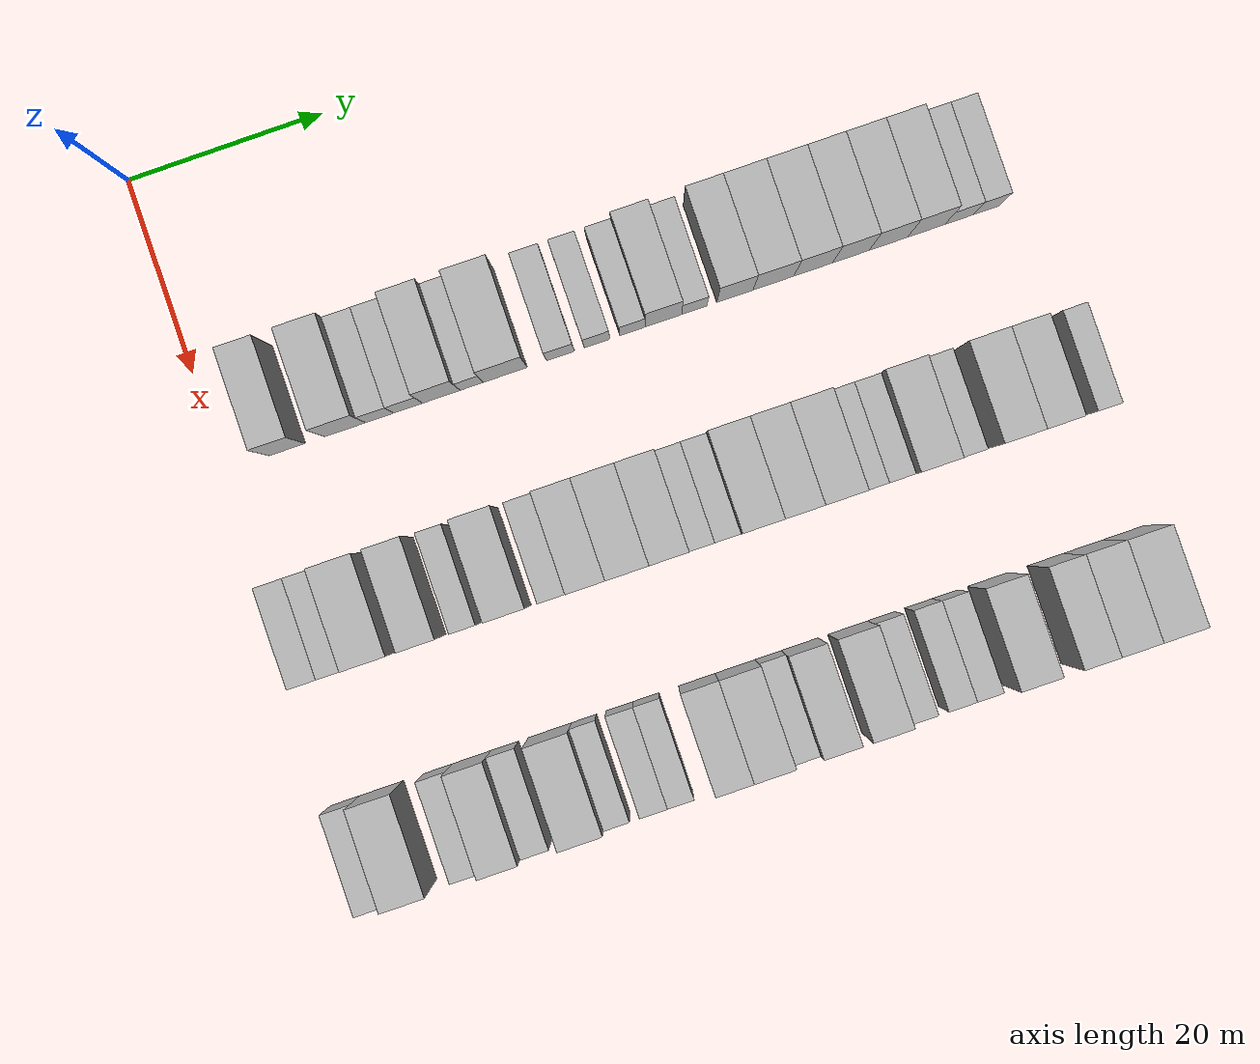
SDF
<sdf version="1.6">
 <world name="default">
  <model name="building_60">
   <static>1</static>
   <pose>25.0000 6.3193 0 0.000000 0.000000 0.000000</pose>
   <link name="link">
    <pose>0 0 4.50 0 0 0</pose>
    <collision name="collision"><geometry><box><size>10.0000 3.6874 9.0000</size></box></geometry></collision>
    <visual name="visual">
     <cast_shadows>0</cast_shadows>
     <geometry><box><size>10.0000 3.6874 9.0000</size></box></geometry>
     <material>
      <script>
       <uri>model://HANNAS_wall/materials/scripts</uri>
       <uri>model://HANNAS_wall/materials/textures</uri>
       <name>vrc/HANNAS_wall</name>
      </script>
     </material>
    </visual>
   </link>
  </model>
  <model name="building_61">
   <static>1</static>
   <pose>25.0000 12.2692 0 0.000000 0.000000 0.000000</pose>
   <link name="link">
    <pose>0 0 4.50 0 0 0</pose>
    <collision name="collision"><geometry><box><size>10.0000 4.2122 9.0000</size></box></geometry></collision>
    <visual name="visual">
     <cast_shadows>0</cast_shadows>
     <geometry><box><size>10.0000 4.2122 9.0000</size></box></geometry>
     <material>
      <script>
       <uri>model://HANNAS_wall/materials/scripts</uri>
       <uri>model://HANNAS_wall/materials/textures</uri>
       <name>vrc/HANNAS_wall</name>
      </script>
     </material>
    </visual>
   </link>
  </model>
  <model name="building_62">
   <static>1</static>
   <pose>25.0000 15.8014 0 0.000000 0.000000 0.000000</pose>
   <link name="link">
    <pose>0 0 3.00 0 0 0</pose>
    <collision name="collision"><geometry><box><size>10.0000 2.8522 6.0000</size></box></geometry></collision>
    <visual name="visual">
     <cast_shadows>0</cast_shadows>
     <geometry><box><size>10.0000 2.8522 6.0000</size></box></geometry>
     <material>
      <script>
       <uri>model://HANNAS_wall/materials/scripts</uri>
       <uri>model://HANNAS_wall/materials/textures</uri>
       <name>vrc/HANNAS_wall</name>
      </script>
     </material>
    </visual>
   </link>
  </model>
  <model name="building_63">
   <static>1</static>
   <pose>25.0000 18.7162 0 0.000000 0.000000 0.000000</pose>
   <link name="link">
    <pose>0 0 3.00 0 0 0</pose>
    <collision name="collision"><geometry><box><size>10.0000 2.9774 6.0000</size></box></geometry></collision>
    <visual name="visual">
     <cast_shadows>0</cast_shadows>
     <geometry><box><size>10.0000 2.9774 6.0000</size></box></geometry>
     <material>
      <script>
       <uri>model://HANNAS_wall/materials/scripts</uri>
       <uri>model://HANNAS_wall/materials/textures</uri>
       <name>vrc/HANNAS_wall</name>
      </script>
     </material>
    </visual>
   </link>
  </model>
  <model name="building_64">
   <static>1</static>
   <pose>25.0000 22.1294 0 0.000000 0.000000 0.000000</pose>
   <link name="link">
    <pose>0 0 4.50 0 0 0</pose>
    <collision name="collision"><geometry><box><size>10.0000 3.8491 9.0000</size></box></geometry></collision>
    <visual name="visual">
     <cast_shadows>0</cast_shadows>
     <geometry><box><size>10.0000 3.8491 9.0000</size></box></geometry>
     <material>
      <script>
       <uri>model://HANNAS_wall/materials/scripts</uri>
       <uri>model://HANNAS_wall/materials/textures</uri>
       <name>vrc/HANNAS_wall</name>
      </script>
     </material>
    </visual>
   </link>
  </model>
  <model name="building_65">
   <static>1</static>
   <pose>25.0000 25.2552 0 0.000000 0.000000 0.000000</pose>
   <link name="link">
    <pose>0 0 3.00 0 0 0</pose>
    <collision name="collision"><geometry><box><size>10.0000 2.4025 6.0000</size></box></geometry></collision>
    <visual name="visual">
     <cast_shadows>0</cast_shadows>
     <geometry><box><size>10.0000 2.4025 6.0000</size></box></geometry>
     <material>
      <script>
       <uri>model://HANNAS_wall/materials/scripts</uri>
       <uri>model://HANNAS_wall/materials/textures</uri>
       <name>vrc/HANNAS_wall</name>
      </script>
     </material>
    </visual>
   </link>
  </model>
  <model name="building_66">
   <static>1</static>
   <pose>25.0000 28.6985 0 0.000000 0.000000 0.000000</pose>
   <link name="link">
    <pose>0 0 4.50 0 0 0</pose>
    <collision name="collision"><geometry><box><size>10.0000 4.4842 9.0000</size></box></geometry></collision>
    <visual name="visual">
     <cast_shadows>0</cast_shadows>
     <geometry><box><size>10.0000 4.4842 9.0000</size></box></geometry>
     <material>
      <script>
       <uri>model://HANNAS_wall/materials/scripts</uri>
       <uri>model://HANNAS_wall/materials/textures</uri>
       <name>vrc/HANNAS_wall</name>
      </script>
     </material>
    </visual>
   </link>
  </model>
  <model name="building_67">
   <static>1</static>
   <pose>25.0000 34.3729 0 0.000000 0.000000 0.000000</pose>
   <link name="link">
    <pose>0 0 3.00 0 0 0</pose>
    <collision name="collision"><geometry><box><size>10.0000 2.8646 6.0000</size></box></geometry></collision>
    <visual name="visual">
     <cast_shadows>0</cast_shadows>
     <geometry><box><size>10.0000 2.8646 6.0000</size></box></geometry>
     <material>
      <script>
       <uri>model://HANNAS_wall/materials/scripts</uri>
       <uri>model://HANNAS_wall/materials/textures</uri>
       <name>vrc/HANNAS_wall</name>
      </script>
     </material>
    </visual>
   </link>
  </model>
  <model name="building_68">
   <static>1</static>
   <pose>25.0000 38.1279 0 0.000000 0.000000 0.000000</pose>
   <link name="link">
    <pose>0 0 3.00 0 0 0</pose>
    <collision name="collision"><geometry><box><size>10.0000 2.6452 6.0000</size></box></geometry></collision>
    <visual name="visual">
     <cast_shadows>0</cast_shadows>
     <geometry><box><size>10.0000 2.6452 6.0000</size></box></geometry>
     <material>
      <script>
       <uri>model://HANNAS_wall/materials/scripts</uri>
       <uri>model://HANNAS_wall/materials/textures</uri>
       <name>vrc/HANNAS_wall</name>
      </script>
     </material>
    </visual>
   </link>
  </model>
  <model name="building_69">
   <static>1</static>
   <pose>25.0000 41.7565 0 0.000000 0.000000 0.000000</pose>
   <link name="link">
    <pose>0 0 3.00 0 0 0</pose>
    <collision name="collision"><geometry><box><size>10.0000 2.6121 6.0000</size></box></geometry></collision>
    <visual name="visual">
     <cast_shadows>0</cast_shadows>
     <geometry><box><size>10.0000 2.6121 6.0000</size></box></geometry>
     <material>
      <script>
       <uri>model://HANNAS_wall/materials/scripts</uri>
       <uri>model://HANNAS_wall/materials/textures</uri>
       <name>vrc/HANNAS_wall</name>
      </script>
     </material>
    </visual>
   </link>
  </model>
  <model name="building_70">
   <static>1</static>
   <pose>25.0000 44.9300 0 0.000000 0.000000 0.000000</pose>
   <link name="link">
    <pose>0 0 4.50 0 0 0</pose>
    <collision name="collision"><geometry><box><size>10.0000 3.7349 9.0000</size></box></geometry></collision>
    <visual name="visual">
     <cast_shadows>0</cast_shadows>
     <geometry><box><size>10.0000 3.7349 9.0000</size></box></geometry>
     <material>
      <script>
       <uri>model://HANNAS_wall/materials/scripts</uri>
       <uri>model://HANNAS_wall/materials/textures</uri>
       <name>vrc/HANNAS_wall</name>
      </script>
     </material>
    </visual>
   </link>
  </model>
  <model name="building_71">
   <static>1</static>
   <pose>25.0000 48.1063 0 0.000000 0.000000 0.000000</pose>
   <link name="link">
    <pose>0 0 3.00 0 0 0</pose>
    <collision name="collision"><geometry><box><size>10.0000 2.6177 6.0000</size></box></geometry></collision>
    <visual name="visual">
     <cast_shadows>0</cast_shadows>
     <geometry><box><size>10.0000 2.6177 6.0000</size></box></geometry>
     <material>
      <script>
       <uri>model://HANNAS_wall/materials/scripts</uri>
       <uri>model://HANNAS_wall/materials/textures</uri>
       <name>vrc/HANNAS_wall</name>
      </script>
     </material>
    </visual>
   </link>
  </model>
  <model name="building_72">
   <static>1</static>
   <pose>25.0000 52.2830 0 0.000000 0.000000 0.000000</pose>
   <link name="link">
    <pose>0 0 4.50 0 0 0</pose>
    <collision name="collision"><geometry><box><size>10.0000 3.7355 9.0000</size></box></geometry></collision>
    <visual name="visual">
     <cast_shadows>0</cast_shadows>
     <geometry><box><size>10.0000 3.7355 9.0000</size></box></geometry>
     <material>
      <script>
       <uri>model://HANNAS_wall/materials/scripts</uri>
       <uri>model://HANNAS_wall/materials/textures</uri>
       <name>vrc/HANNAS_wall</name>
      </script>
     </material>
    </visual>
   </link>
  </model>
  <model name="building_73">
   <static>1</static>
   <pose>25.0000 56.2549 0 0.000000 0.000000 0.000000</pose>
   <link name="link">
    <pose>0 0 4.50 0 0 0</pose>
    <collision name="collision"><geometry><box><size>10.0000 4.2084 9.0000</size></box></geometry></collision>
    <visual name="visual">
     <cast_shadows>0</cast_shadows>
     <geometry><box><size>10.0000 4.2084 9.0000</size></box></geometry>
     <material>
      <script>
       <uri>model://HANNAS_wall/materials/scripts</uri>
       <uri>model://HANNAS_wall/materials/textures</uri>
       <name>vrc/HANNAS_wall</name>
      </script>
     </material>
    </visual>
   </link>
  </model>
  <model name="building_74">
   <static>1</static>
   <pose>25.0000 60.3613 0 0.000000 0.000000 0.000000</pose>
   <link name="link">
    <pose>0 0 4.50 0 0 0</pose>
    <collision name="collision"><geometry><box><size>10.0000 4.0045 9.0000</size></box></geometry></collision>
    <visual name="visual">
     <cast_shadows>0</cast_shadows>
     <geometry><box><size>10.0000 4.0045 9.0000</size></box></geometry>
     <material>
      <script>
       <uri>model://HANNAS_wall/materials/scripts</uri>
       <uri>model://HANNAS_wall/materials/textures</uri>
       <name>vrc/HANNAS_wall</name>
      </script>
     </material>
    </visual>
   </link>
  </model>
  <model name="building_75">
   <static>1</static>
   <pose>25.0000 64.2521 0 0.000000 0.000000 0.000000</pose>
   <link name="link">
    <pose>0 0 4.50 0 0 0</pose>
    <collision name="collision"><geometry><box><size>10.0000 3.7771 9.0000</size></box></geometry></collision>
    <visual name="visual">
     <cast_shadows>0</cast_shadows>
     <geometry><box><size>10.0000 3.7771 9.0000</size></box></geometry>
     <material>
      <script>
       <uri>model://HANNAS_wall/materials/scripts</uri>
       <uri>model://HANNAS_wall/materials/textures</uri>
       <name>vrc/HANNAS_wall</name>
      </script>
     </material>
    </visual>
   </link>
  </model>
  <model name="building_76">
   <static>1</static>
   <pose>25.0000 68.1007 0 0.000000 0.000000 0.000000</pose>
   <link name="link">
    <pose>0 0 4.50 0 0 0</pose>
    <collision name="collision"><geometry><box><size>10.0000 3.9199 9.0000</size></box></geometry></collision>
    <visual name="visual">
     <cast_shadows>0</cast_shadows>
     <geometry><box><size>10.0000 3.9199 9.0000</size></box></geometry>
     <material>
      <script>
       <uri>model://HANNAS_wall/materials/scripts</uri>
       <uri>model://HANNAS_wall/materials/textures</uri>
       <name>vrc/HANNAS_wall</name>
      </script>
     </material>
    </visual>
   </link>
  </model>
  <model name="building_77">
   <static>1</static>
   <pose>25.0000 72.0062 0 0.000000 0.000000 0.000000</pose>
   <link name="link">
    <pose>0 0 4.50 0 0 0</pose>
    <collision name="collision"><geometry><box><size>10.0000 3.8911 9.0000</size></box></geometry></collision>
    <visual name="visual">
     <cast_shadows>0</cast_shadows>
     <geometry><box><size>10.0000 3.8911 9.0000</size></box></geometry>
     <material>
      <script>
       <uri>model://HANNAS_wall/materials/scripts</uri>
       <uri>model://HANNAS_wall/materials/textures</uri>
       <name>vrc/HANNAS_wall</name>
      </script>
     </material>
    </visual>
   </link>
  </model>
  <model name="building_78">
   <static>1</static>
   <pose>25.0000 75.4390 0 0.000000 0.000000 0.000000</pose>
   <link name="link">
    <pose>0 0 3.00 0 0 0</pose>
    <collision name="collision"><geometry><box><size>10.0000 2.9746 6.0000</size></box></geometry></collision>
    <visual name="visual">
     <cast_shadows>0</cast_shadows>
     <geometry><box><size>10.0000 2.9746 6.0000</size></box></geometry>
     <material>
      <script>
       <uri>model://HANNAS_wall/materials/scripts</uri>
       <uri>model://HANNAS_wall/materials/textures</uri>
       <name>vrc/HANNAS_wall</name>
      </script>
     </material>
    </visual>
   </link>
  </model>
  <model name="building_79">
   <static>1</static>
   <pose>25.0000 78.2682 0 0.000000 0.000000 0.000000</pose>
   <link name="link">
    <pose>0 0 3.00 0 0 0</pose>
    <collision name="collision"><geometry><box><size>10.0000 2.6837 6.0000</size></box></geometry></collision>
    <visual name="visual">
     <cast_shadows>0</cast_shadows>
     <geometry><box><size>10.0000 2.6837 6.0000</size></box></geometry>
     <material>
      <script>
       <uri>model://HANNAS_wall/materials/scripts</uri>
       <uri>model://HANNAS_wall/materials/textures</uri>
       <name>vrc/HANNAS_wall</name>
      </script>
     </material>
    </visual>
   </link>
  </model>
  <model name="building_188">
   <static>1</static>
   <pose>47.0000 1.5951 0 0.000000 0.000000 0.000000</pose>
   <link name="link">
    <pose>0 0 3.00 0 0 0</pose>
    <collision name="collision"><geometry><box><size>10.0000 2.8868 6.0000</size></box></geometry></collision>
    <visual name="visual">
     <cast_shadows>0</cast_shadows>
     <geometry><box><size>10.0000 2.8868 6.0000</size></box></geometry>
     <material>
      <script>
       <uri>model://HANNAS_wall/materials/scripts</uri>
       <uri>model://HANNAS_wall/materials/textures</uri>
       <name>vrc/HANNAS_wall</name>
      </script>
     </material>
    </visual>
   </link>
  </model>
  <model name="building_189">
   <static>1</static>
   <pose>47.0000 4.4848 0 0.000000 0.000000 0.000000</pose>
   <link name="link">
    <pose>0 0 3.00 0 0 0</pose>
    <collision name="collision"><geometry><box><size>10.0000 2.8925 6.0000</size></box></geometry></collision>
    <visual name="visual">
     <cast_shadows>0</cast_shadows>
     <geometry><box><size>10.0000 2.8925 6.0000</size></box></geometry>
     <material>
      <script>
       <uri>model://HANNAS_wall/materials/scripts</uri>
       <uri>model://HANNAS_wall/materials/textures</uri>
       <name>vrc/HANNAS_wall</name>
      </script>
     </material>
    </visual>
   </link>
  </model>
  <model name="building_190">
   <static>1</static>
   <pose>47.0000 8.1538 0 0.000000 0.000000 0.000000</pose>
   <link name="link">
    <pose>0 0 4.50 0 0 0</pose>
    <collision name="collision"><geometry><box><size>10.0000 4.4456 9.0000</size></box></geometry></collision>
    <visual name="visual">
     <cast_shadows>0</cast_shadows>
     <geometry><box><size>10.0000 4.4456 9.0000</size></box></geometry>
     <material>
      <script>
       <uri>model://HANNAS_wall/materials/scripts</uri>
       <uri>model://HANNAS_wall/materials/textures</uri>
       <name>vrc/HANNAS_wall</name>
      </script>
     </material>
    </visual>
   </link>
  </model>
  <model name="building_191">
   <static>1</static>
   <pose>47.0000 13.2577 0 0.000000 0.000000 0.000000</pose>
   <link name="link">
    <pose>0 0 4.50 0 0 0</pose>
    <collision name="collision"><geometry><box><size>10.0000 3.7621 9.0000</size></box></geometry></collision>
    <visual name="visual">
     <cast_shadows>0</cast_shadows>
     <geometry><box><size>10.0000 3.7621 9.0000</size></box></geometry>
     <material>
      <script>
       <uri>model://HANNAS_wall/materials/scripts</uri>
       <uri>model://HANNAS_wall/materials/textures</uri>
       <name>vrc/HANNAS_wall</name>
      </script>
     </material>
    </visual>
   </link>
  </model>
  <model name="building_192">
   <static>1</static>
   <pose>47.0000 17.4488 0 0.000000 0.000000 0.000000</pose>
   <link name="link">
    <pose>0 0 3.00 0 0 0</pose>
    <collision name="collision"><geometry><box><size>10.0000 2.6199 6.0000</size></box></geometry></collision>
    <visual name="visual">
     <cast_shadows>0</cast_shadows>
     <geometry><box><size>10.0000 2.6199 6.0000</size></box></geometry>
     <material>
      <script>
       <uri>model://HANNAS_wall/materials/scripts</uri>
       <uri>model://HANNAS_wall/materials/textures</uri>
       <name>vrc/HANNAS_wall</name>
      </script>
     </material>
    </visual>
   </link>
  </model>
  <model name="building_193">
   <static>1</static>
   <pose>47.0000 21.7989 0 0.000000 0.000000 0.000000</pose>
   <link name="link">
    <pose>0 0 4.50 0 0 0</pose>
    <collision name="collision"><geometry><box><size>10.0000 4.0803 9.0000</size></box></geometry></collision>
    <visual name="visual">
     <cast_shadows>0</cast_shadows>
     <geometry><box><size>10.0000 4.0803 9.0000</size></box></geometry>
     <material>
      <script>
       <uri>model://HANNAS_wall/materials/scripts</uri>
       <uri>model://HANNAS_wall/materials/textures</uri>
       <name>vrc/HANNAS_wall</name>
      </script>
     </material>
    </visual>
   </link>
  </model>
  <model name="building_194">
   <static>1</static>
   <pose>47.0000 26.3028 0 0.000000 0.000000 0.000000</pose>
   <link name="link">
    <pose>0 0 3.00 0 0 0</pose>
    <collision name="collision"><geometry><box><size>10.0000 2.9274 6.0000</size></box></geometry></collision>
    <visual name="visual">
     <cast_shadows>0</cast_shadows>
     <geometry><box><size>10.0000 2.9274 6.0000</size></box></geometry>
     <material>
      <script>
       <uri>model://HANNAS_wall/materials/scripts</uri>
       <uri>model://HANNAS_wall/materials/textures</uri>
       <name>vrc/HANNAS_wall</name>
      </script>
     </material>
    </visual>
   </link>
  </model>
  <model name="building_195">
   <static>1</static>
   <pose>47.0000 29.7015 0 0.000000 0.000000 0.000000</pose>
   <link name="link">
    <pose>0 0 4.50 0 0 0</pose>
    <collision name="collision"><geometry><box><size>10.0000 3.8700 9.0000</size></box></geometry></collision>
    <visual name="visual">
     <cast_shadows>0</cast_shadows>
     <geometry><box><size>10.0000 3.8700 9.0000</size></box></geometry>
     <material>
      <script>
       <uri>model://HANNAS_wall/materials/scripts</uri>
       <uri>model://HANNAS_wall/materials/textures</uri>
       <name>vrc/HANNAS_wall</name>
      </script>
     </material>
    </visual>
   </link>
  </model>
  <model name="building_196">
   <static>1</static>
   <pose>47.0000 33.7715 0 0.000000 0.000000 0.000000</pose>
   <link name="link">
    <pose>0 0 4.50 0 0 0</pose>
    <collision name="collision"><geometry><box><size>10.0000 4.2700 9.0000</size></box></geometry></collision>
    <visual name="visual">
     <cast_shadows>0</cast_shadows>
     <geometry><box><size>10.0000 4.2700 9.0000</size></box></geometry>
     <material>
      <script>
       <uri>model://HANNAS_wall/materials/scripts</uri>
       <uri>model://HANNAS_wall/materials/textures</uri>
       <name>vrc/HANNAS_wall</name>
      </script>
     </material>
    </visual>
   </link>
  </model>
  <model name="building_197">
   <static>1</static>
   <pose>47.0000 37.8632 0 0.000000 0.000000 0.000000</pose>
   <link name="link">
    <pose>0 0 4.50 0 0 0</pose>
    <collision name="collision"><geometry><box><size>10.0000 3.9134 9.0000</size></box></geometry></collision>
    <visual name="visual">
     <cast_shadows>0</cast_shadows>
     <geometry><box><size>10.0000 3.9134 9.0000</size></box></geometry>
     <material>
      <script>
       <uri>model://HANNAS_wall/materials/scripts</uri>
       <uri>model://HANNAS_wall/materials/textures</uri>
       <name>vrc/HANNAS_wall</name>
      </script>
     </material>
    </visual>
   </link>
  </model>
  <model name="building_198">
   <static>1</static>
   <pose>47.0000 41.1156 0 0.000000 0.000000 0.000000</pose>
   <link name="link">
    <pose>0 0 3.00 0 0 0</pose>
    <collision name="collision"><geometry><box><size>10.0000 2.5913 6.0000</size></box></geometry></collision>
    <visual name="visual">
     <cast_shadows>0</cast_shadows>
     <geometry><box><size>10.0000 2.5913 6.0000</size></box></geometry>
     <material>
      <script>
       <uri>model://HANNAS_wall/materials/scripts</uri>
       <uri>model://HANNAS_wall/materials/textures</uri>
       <name>vrc/HANNAS_wall</name>
      </script>
     </material>
    </visual>
   </link>
  </model>
  <model name="building_199">
   <static>1</static>
   <pose>47.0000 43.7142 0 0.000000 0.000000 0.000000</pose>
   <link name="link">
    <pose>0 0 3.00 0 0 0</pose>
    <collision name="collision"><geometry><box><size>10.0000 2.6058 6.0000</size></box></geometry></collision>
    <visual name="visual">
     <cast_shadows>0</cast_shadows>
     <geometry><box><size>10.0000 2.6058 6.0000</size></box></geometry>
     <material>
      <script>
       <uri>model://HANNAS_wall/materials/scripts</uri>
       <uri>model://HANNAS_wall/materials/textures</uri>
       <name>vrc/HANNAS_wall</name>
      </script>
     </material>
    </visual>
   </link>
  </model>
  <model name="building_200">
   <static>1</static>
   <pose>47.0000 47.0917 0 0.000000 0.000000 0.000000</pose>
   <link name="link">
    <pose>0 0 4.50 0 0 0</pose>
    <collision name="collision"><geometry><box><size>10.0000 4.1493 9.0000</size></box></geometry></collision>
    <visual name="visual">
     <cast_shadows>0</cast_shadows>
     <geometry><box><size>10.0000 4.1493 9.0000</size></box></geometry>
     <material>
      <script>
       <uri>model://HANNAS_wall/materials/scripts</uri>
       <uri>model://HANNAS_wall/materials/textures</uri>
       <name>vrc/HANNAS_wall</name>
      </script>
     </material>
    </visual>
   </link>
  </model>
  <model name="building_201">
   <static>1</static>
   <pose>47.0000 51.1164 0 0.000000 0.000000 0.000000</pose>
   <link name="link">
    <pose>0 0 4.50 0 0 0</pose>
    <collision name="collision"><geometry><box><size>10.0000 3.9002 9.0000</size></box></geometry></collision>
    <visual name="visual">
     <cast_shadows>0</cast_shadows>
     <geometry><box><size>10.0000 3.9002 9.0000</size></box></geometry>
     <material>
      <script>
       <uri>model://HANNAS_wall/materials/scripts</uri>
       <uri>model://HANNAS_wall/materials/textures</uri>
       <name>vrc/HANNAS_wall</name>
      </script>
     </material>
    </visual>
   </link>
  </model>
  <model name="building_202">
   <static>1</static>
   <pose>47.0000 55.1721 0 0.000000 0.000000 0.000000</pose>
   <link name="link">
    <pose>0 0 4.50 0 0 0</pose>
    <collision name="collision"><geometry><box><size>10.0000 4.2113 9.0000</size></box></geometry></collision>
    <visual name="visual">
     <cast_shadows>0</cast_shadows>
     <geometry><box><size>10.0000 4.2113 9.0000</size></box></geometry>
     <material>
      <script>
       <uri>model://HANNAS_wall/materials/scripts</uri>
       <uri>model://HANNAS_wall/materials/textures</uri>
       <name>vrc/HANNAS_wall</name>
      </script>
     </material>
    </visual>
   </link>
  </model>
  <model name="building_203">
   <static>1</static>
   <pose>47.0000 58.4894 0 0.000000 0.000000 0.000000</pose>
   <link name="link">
    <pose>0 0 3.00 0 0 0</pose>
    <collision name="collision"><geometry><box><size>10.0000 2.4232 6.0000</size></box></geometry></collision>
    <visual name="visual">
     <cast_shadows>0</cast_shadows>
     <geometry><box><size>10.0000 2.4232 6.0000</size></box></geometry>
     <material>
      <script>
       <uri>model://HANNAS_wall/materials/scripts</uri>
       <uri>model://HANNAS_wall/materials/textures</uri>
       <name>vrc/HANNAS_wall</name>
      </script>
     </material>
    </visual>
   </link>
  </model>
  <model name="building_204">
   <static>1</static>
   <pose>47.0000 61.0210 0 0.000000 0.000000 0.000000</pose>
   <link name="link">
    <pose>0 0 3.00 0 0 0</pose>
    <collision name="collision"><geometry><box><size>10.0000 2.6400 6.0000</size></box></geometry></collision>
    <visual name="visual">
     <cast_shadows>0</cast_shadows>
     <geometry><box><size>10.0000 2.6400 6.0000</size></box></geometry>
     <material>
      <script>
       <uri>model://HANNAS_wall/materials/scripts</uri>
       <uri>model://HANNAS_wall/materials/textures</uri>
       <name>vrc/HANNAS_wall</name>
      </script>
     </material>
    </visual>
   </link>
  </model>
  <model name="building_205">
   <static>1</static>
   <pose>47.0000 64.4321 0 0.000000 0.000000 0.000000</pose>
   <link name="link">
    <pose>0 0 4.50 0 0 0</pose>
    <collision name="collision"><geometry><box><size>10.0000 4.1822 9.0000</size></box></geometry></collision>
    <visual name="visual">
     <cast_shadows>0</cast_shadows>
     <geometry><box><size>10.0000 4.1822 9.0000</size></box></geometry>
     <material>
      <script>
       <uri>model://HANNAS_wall/materials/scripts</uri>
       <uri>model://HANNAS_wall/materials/textures</uri>
       <name>vrc/HANNAS_wall</name>
      </script>
     </material>
    </visual>
   </link>
  </model>
  <model name="building_206">
   <static>1</static>
   <pose>47.0000 68.0012 0 0.000000 0.000000 0.000000</pose>
   <link name="link">
    <pose>0 0 3.00 0 0 0</pose>
    <collision name="collision"><geometry><box><size>10.0000 2.9558 6.0000</size></box></geometry></collision>
    <visual name="visual">
     <cast_shadows>0</cast_shadows>
     <geometry><box><size>10.0000 2.9558 6.0000</size></box></geometry>
     <material>
      <script>
       <uri>model://HANNAS_wall/materials/scripts</uri>
       <uri>model://HANNAS_wall/materials/textures</uri>
       <name>vrc/HANNAS_wall</name>
      </script>
     </material>
    </visual>
   </link>
  </model>
  <model name="building_207">
   <static>1</static>
   <pose>47.0000 72.5487 0 0.000000 0.000000 0.000000</pose>
   <link name="link">
    <pose>0 0 4.50 0 0 0</pose>
    <collision name="collision"><geometry><box><size>10.0000 4.1393 9.0000</size></box></geometry></collision>
    <visual name="visual">
     <cast_shadows>0</cast_shadows>
     <geometry><box><size>10.0000 4.1393 9.0000</size></box></geometry>
     <material>
      <script>
       <uri>model://HANNAS_wall/materials/scripts</uri>
       <uri>model://HANNAS_wall/materials/textures</uri>
       <name>vrc/HANNAS_wall</name>
      </script>
     </material>
    </visual>
   </link>
  </model>
  <model name="building_208">
   <static>1</static>
   <pose>47.0000 76.5085 0 0.000000 0.000000 0.000000</pose>
   <link name="link">
    <pose>0 0 4.50 0 0 0</pose>
    <collision name="collision"><geometry><box><size>10.0000 3.7805 9.0000</size></box></geometry></collision>
    <visual name="visual">
     <cast_shadows>0</cast_shadows>
     <geometry><box><size>10.0000 3.7805 9.0000</size></box></geometry>
     <material>
      <script>
       <uri>model://HANNAS_wall/materials/scripts</uri>
       <uri>model://HANNAS_wall/materials/textures</uri>
       <name>vrc/HANNAS_wall</name>
      </script>
     </material>
    </visual>
   </link>
  </model>
  <model name="building_209">
   <static>1</static>
   <pose>47.0000 81.6304 0 0.000000 0.000000 0.000000</pose>
   <link name="link">
    <pose>0 0 3.00 0 0 0</pose>
    <collision name="collision"><geometry><box><size>10.0000 2.4632 6.0000</size></box></geometry></collision>
    <visual name="visual">
     <cast_shadows>0</cast_shadows>
     <geometry><box><size>10.0000 2.4632 6.0000</size></box></geometry>
     <material>
      <script>
       <uri>model://HANNAS_wall/materials/scripts</uri>
       <uri>model://HANNAS_wall/materials/textures</uri>
       <name>vrc/HANNAS_wall</name>
      </script>
     </material>
    </visual>
   </link>
  </model>
  <model name="building_319">
   <static>1</static>
   <pose>69.0000 0.7981 0 0.000000 0.000000 0.000000</pose>
   <link name="link">
    <pose>0 0 3.00 0 0 0</pose>
    <collision name="collision"><geometry><box><size>10.0000 2.9769 6.0000</size></box></geometry></collision>
    <visual name="visual">
     <cast_shadows>0</cast_shadows>
     <geometry><box><size>10.0000 2.9769 6.0000</size></box></geometry>
     <material>
      <script>
       <uri>model://HANNAS_wall/materials/scripts</uri>
       <uri>model://HANNAS_wall/materials/textures</uri>
       <name>vrc/HANNAS_wall</name>
      </script>
     </material>
    </visual>
   </link>
  </model>
  <model name="building_320">
   <static>1</static>
   <pose>69.0000 4.5034 0 0.000000 0.000000 0.000000</pose>
   <link name="link">
    <pose>0 0 4.50 0 0 0</pose>
    <collision name="collision"><geometry><box><size>10.0000 4.4337 9.0000</size></box></geometry></collision>
    <visual name="visual">
     <cast_shadows>0</cast_shadows>
     <geometry><box><size>10.0000 4.4337 9.0000</size></box></geometry>
     <material>
      <script>
       <uri>model://HANNAS_wall/materials/scripts</uri>
       <uri>model://HANNAS_wall/materials/textures</uri>
       <name>vrc/HANNAS_wall</name>
      </script>
     </material>
    </visual>
   </link>
  </model>
  <model name="building_321">
   <static>1</static>
   <pose>69.0000 10.2073 0 0.000000 0.000000 0.000000</pose>
   <link name="link">
    <pose>0 0 3.00 0 0 0</pose>
    <collision name="collision"><geometry><box><size>10.0000 2.9742 6.0000</size></box></geometry></collision>
    <visual name="visual">
     <cast_shadows>0</cast_shadows>
     <geometry><box><size>10.0000 2.9742 6.0000</size></box></geometry>
     <material>
      <script>
       <uri>model://HANNAS_wall/materials/scripts</uri>
       <uri>model://HANNAS_wall/materials/textures</uri>
       <name>vrc/HANNAS_wall</name>
      </script>
     </material>
    </visual>
   </link>
  </model>
  <model name="building_322">
   <static>1</static>
   <pose>69.0000 13.6758 0 0.000000 0.000000 0.000000</pose>
   <link name="link">
    <pose>0 0 4.50 0 0 0</pose>
    <collision name="collision"><geometry><box><size>10.0000 3.9628 9.0000</size></box></geometry></collision>
    <visual name="visual">
     <cast_shadows>0</cast_shadows>
     <geometry><box><size>10.0000 3.9628 9.0000</size></box></geometry>
     <material>
      <script>
       <uri>model://HANNAS_wall/materials/scripts</uri>
       <uri>model://HANNAS_wall/materials/textures</uri>
       <name>vrc/HANNAS_wall</name>
      </script>
     </material>
    </visual>
   </link>
  </model>
  <model name="building_323">
   <static>1</static>
   <pose>69.0000 17.0615 0 0.000000 0.000000 0.000000</pose>
   <link name="link">
    <pose>0 0 3.00 0 0 0</pose>
    <collision name="collision"><geometry><box><size>10.0000 2.8086 6.0000</size></box></geometry></collision>
    <visual name="visual">
     <cast_shadows>0</cast_shadows>
     <geometry><box><size>10.0000 2.8086 6.0000</size></box></geometry>
     <material>
      <script>
       <uri>model://HANNAS_wall/materials/scripts</uri>
       <uri>model://HANNAS_wall/materials/textures</uri>
       <name>vrc/HANNAS_wall</name>
      </script>
     </material>
    </visual>
   </link>
  </model>
  <model name="building_324">
   <static>1</static>
   <pose>69.0000 21.6616 0 0.000000 0.000000 0.000000</pose>
   <link name="link">
    <pose>0 0 4.50 0 0 0</pose>
    <collision name="collision"><geometry><box><size>10.0000 4.3916 9.0000</size></box></geometry></collision>
    <visual name="visual">
     <cast_shadows>0</cast_shadows>
     <geometry><box><size>10.0000 4.3916 9.0000</size></box></geometry>
     <material>
      <script>
       <uri>model://HANNAS_wall/materials/scripts</uri>
       <uri>model://HANNAS_wall/materials/textures</uri>
       <name>vrc/HANNAS_wall</name>
      </script>
     </material>
    </visual>
   </link>
  </model>
  <model name="building_325">
   <static>1</static>
   <pose>69.0000 25.1388 0 0.000000 0.000000 0.000000</pose>
   <link name="link">
    <pose>0 0 3.00 0 0 0</pose>
    <collision name="collision"><geometry><box><size>10.0000 2.5629 6.0000</size></box></geometry></collision>
    <visual name="visual">
     <cast_shadows>0</cast_shadows>
     <geometry><box><size>10.0000 2.5629 6.0000</size></box></geometry>
     <material>
      <script>
       <uri>model://HANNAS_wall/materials/scripts</uri>
       <uri>model://HANNAS_wall/materials/textures</uri>
       <name>vrc/HANNAS_wall</name>
      </script>
     </material>
    </visual>
   </link>
  </model>
  <model name="building_326">
   <static>1</static>
   <pose>69.0000 28.7913 0 0.000000 0.000000 0.000000</pose>
   <link name="link">
    <pose>0 0 3.00 0 0 0</pose>
    <collision name="collision"><geometry><box><size>10.0000 2.7421 6.0000</size></box></geometry></collision>
    <visual name="visual">
     <cast_shadows>0</cast_shadows>
     <geometry><box><size>10.0000 2.7421 6.0000</size></box></geometry>
     <material>
      <script>
       <uri>model://HANNAS_wall/materials/scripts</uri>
       <uri>model://HANNAS_wall/materials/textures</uri>
       <name>vrc/HANNAS_wall</name>
      </script>
     </material>
    </visual>
   </link>
  </model>
  <model name="building_327">
   <static>1</static>
   <pose>69.0000 31.4802 0 0.000000 0.000000 0.000000</pose>
   <link name="link">
    <pose>0 0 3.00 0 0 0</pose>
    <collision name="collision"><geometry><box><size>10.0000 2.6357 6.0000</size></box></geometry></collision>
    <visual name="visual">
     <cast_shadows>0</cast_shadows>
     <geometry><box><size>10.0000 2.6357 6.0000</size></box></geometry>
     <material>
      <script>
       <uri>model://HANNAS_wall/materials/scripts</uri>
       <uri>model://HANNAS_wall/materials/textures</uri>
       <name>vrc/HANNAS_wall</name>
      </script>
     </material>
    </visual>
   </link>
  </model>
  <model name="building_328">
   <static>1</static>
   <pose>69.0000 36.6659 0 0.000000 0.000000 0.000000</pose>
   <link name="link">
    <pose>0 0 4.50 0 0 0</pose>
    <collision name="collision"><geometry><box><size>10.0000 3.7357 9.0000</size></box></geometry></collision>
    <visual name="visual">
     <cast_shadows>0</cast_shadows>
     <geometry><box><size>10.0000 3.7357 9.0000</size></box></geometry>
     <material>
      <script>
       <uri>model://HANNAS_wall/materials/scripts</uri>
       <uri>model://HANNAS_wall/materials/textures</uri>
       <name>vrc/HANNAS_wall</name>
      </script>
     </material>
    </visual>
   </link>
  </model>
  <model name="building_329">
   <static>1</static>
   <pose>69.0000 40.5840 0 0.000000 0.000000 0.000000</pose>
   <link name="link">
    <pose>0 0 4.50 0 0 0</pose>
    <collision name="collision"><geometry><box><size>10.0000 4.1005 9.0000</size></box></geometry></collision>
    <visual name="visual">
     <cast_shadows>0</cast_shadows>
     <geometry><box><size>10.0000 4.1005 9.0000</size></box></geometry>
     <material>
      <script>
       <uri>model://HANNAS_wall/materials/scripts</uri>
       <uri>model://HANNAS_wall/materials/textures</uri>
       <name>vrc/HANNAS_wall</name>
      </script>
     </material>
    </visual>
   </link>
  </model>
  <model name="building_330">
   <static>1</static>
   <pose>69.0000 43.9595 0 0.000000 0.000000 0.000000</pose>
   <link name="link">
    <pose>0 0 3.00 0 0 0</pose>
    <collision name="collision"><geometry><box><size>10.0000 2.6506 6.0000</size></box></geometry></collision>
    <visual name="visual">
     <cast_shadows>0</cast_shadows>
     <geometry><box><size>10.0000 2.6506 6.0000</size></box></geometry>
     <material>
      <script>
       <uri>model://HANNAS_wall/materials/scripts</uri>
       <uri>model://HANNAS_wall/materials/textures</uri>
       <name>vrc/HANNAS_wall</name>
      </script>
     </material>
    </visual>
   </link>
  </model>
  <model name="building_331">
   <static>1</static>
   <pose>69.0000 47.1818 0 0.000000 0.000000 0.000000</pose>
   <link name="link">
    <pose>0 0 4.50 0 0 0</pose>
    <collision name="collision"><geometry><box><size>10.0000 3.7940 9.0000</size></box></geometry></collision>
    <visual name="visual">
     <cast_shadows>0</cast_shadows>
     <geometry><box><size>10.0000 3.7940 9.0000</size></box></geometry>
     <material>
      <script>
       <uri>model://HANNAS_wall/materials/scripts</uri>
       <uri>model://HANNAS_wall/materials/textures</uri>
       <name>vrc/HANNAS_wall</name>
      </script>
     </material>
    </visual>
   </link>
  </model>
  <model name="building_332">
   <static>1</static>
   <pose>69.0000 52.0968 0 0.000000 0.000000 0.000000</pose>
   <link name="link">
    <pose>0 0 4.50 0 0 0</pose>
    <collision name="collision"><geometry><box><size>10.0000 4.0361 9.0000</size></box></geometry></collision>
    <visual name="visual">
     <cast_shadows>0</cast_shadows>
     <geometry><box><size>10.0000 4.0361 9.0000</size></box></geometry>
     <material>
      <script>
       <uri>model://HANNAS_wall/materials/scripts</uri>
       <uri>model://HANNAS_wall/materials/textures</uri>
       <name>vrc/HANNAS_wall</name>
      </script>
     </material>
    </visual>
   </link>
  </model>
  <model name="building_333">
   <static>1</static>
   <pose>69.0000 55.5251 0 0.000000 0.000000 0.000000</pose>
   <link name="link">
    <pose>0 0 3.00 0 0 0</pose>
    <collision name="collision"><geometry><box><size>10.0000 2.8204 6.0000</size></box></geometry></collision>
    <visual name="visual">
     <cast_shadows>0</cast_shadows>
     <geometry><box><size>10.0000 2.8204 6.0000</size></box></geometry>
     <material>
      <script>
       <uri>model://HANNAS_wall/materials/scripts</uri>
       <uri>model://HANNAS_wall/materials/textures</uri>
       <name>vrc/HANNAS_wall</name>
      </script>
     </material>
    </visual>
   </link>
  </model>
  <model name="building_334">
   <static>1</static>
   <pose>69.0000 59.3393 0 0.000000 0.000000 0.000000</pose>
   <link name="link">
    <pose>0 0 3.00 0 0 0</pose>
    <collision name="collision"><geometry><box><size>10.0000 2.8082 6.0000</size></box></geometry></collision>
    <visual name="visual">
     <cast_shadows>0</cast_shadows>
     <geometry><box><size>10.0000 2.8082 6.0000</size></box></geometry>
     <material>
      <script>
       <uri>model://HANNAS_wall/materials/scripts</uri>
       <uri>model://HANNAS_wall/materials/textures</uri>
       <name>vrc/HANNAS_wall</name>
      </script>
     </material>
    </visual>
   </link>
  </model>
  <model name="building_335">
   <static>1</static>
   <pose>69.0000 62.0692 0 0.000000 0.000000 0.000000</pose>
   <link name="link">
    <pose>0 0 3.00 0 0 0</pose>
    <collision name="collision"><geometry><box><size>10.0000 2.6515 6.0000</size></box></geometry></collision>
    <visual name="visual">
     <cast_shadows>0</cast_shadows>
     <geometry><box><size>10.0000 2.6515 6.0000</size></box></geometry>
     <material>
      <script>
       <uri>model://HANNAS_wall/materials/scripts</uri>
       <uri>model://HANNAS_wall/materials/textures</uri>
       <name>vrc/HANNAS_wall</name>
      </script>
     </material>
    </visual>
   </link>
  </model>
  <model name="building_336">
   <static>1</static>
   <pose>69.0000 66.4598 0 0.000000 0.000000 0.000000</pose>
   <link name="link">
    <pose>0 0 4.50 0 0 0</pose>
    <collision name="collision"><geometry><box><size>10.0000 4.1299 9.0000</size></box></geometry></collision>
    <visual name="visual">
     <cast_shadows>0</cast_shadows>
     <geometry><box><size>10.0000 4.1299 9.0000</size></box></geometry>
     <material>
      <script>
       <uri>model://HANNAS_wall/materials/scripts</uri>
       <uri>model://HANNAS_wall/materials/textures</uri>
       <name>vrc/HANNAS_wall</name>
      </script>
     </material>
    </visual>
   </link>
  </model>
  <model name="building_337">
   <static>1</static>
   <pose>69.0000 72.3327 0 0.000000 0.000000 0.000000</pose>
   <link name="link">
    <pose>0 0 4.50 0 0 0</pose>
    <collision name="collision"><geometry><box><size>10.0000 3.6158 9.0000</size></box></geometry></collision>
    <visual name="visual">
     <cast_shadows>0</cast_shadows>
     <geometry><box><size>10.0000 3.6158 9.0000</size></box></geometry>
     <material>
      <script>
       <uri>model://HANNAS_wall/materials/scripts</uri>
       <uri>model://HANNAS_wall/materials/textures</uri>
       <name>vrc/HANNAS_wall</name>
      </script>
     </material>
    </visual>
   </link>
  </model>
  <model name="building_338">
   <static>1</static>
   <pose>69.0000 76.1715 0 0.000000 0.000000 0.000000</pose>
   <link name="link">
    <pose>0 0 4.50 0 0 0</pose>
    <collision name="collision"><geometry><box><size>10.0000 4.0617 9.0000</size></box></geometry></collision>
    <visual name="visual">
     <cast_shadows>0</cast_shadows>
     <geometry><box><size>10.0000 4.0617 9.0000</size></box></geometry>
     <material>
      <script>
       <uri>model://HANNAS_wall/materials/scripts</uri>
       <uri>model://HANNAS_wall/materials/textures</uri>
       <name>vrc/HANNAS_wall</name>
      </script>
     </material>
    </visual>
   </link>
  </model>
  <model name="building_339">
   <static>1</static>
   <pose>69.0000 80.4268 0 0.000000 0.000000 0.000000</pose>
   <link name="link">
    <pose>0 0 4.50 0 0 0</pose>
    <collision name="collision"><geometry><box><size>10.0000 4.4490 9.0000</size></box></geometry></collision>
    <visual name="visual">
     <cast_shadows>0</cast_shadows>
     <geometry><box><size>10.0000 4.4490 9.0000</size></box></geometry>
     <material>
      <script>
       <uri>model://HANNAS_wall/materials/scripts</uri>
       <uri>model://HANNAS_wall/materials/textures</uri>
       <name>vrc/HANNAS_wall</name>
      </script>
     </material>
    </visual>
   </link>
  </model>
 </world>
</sdf>
